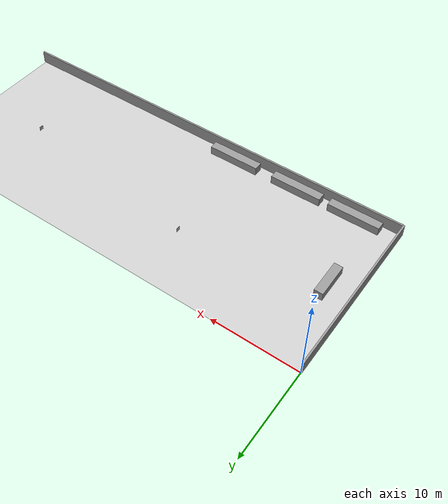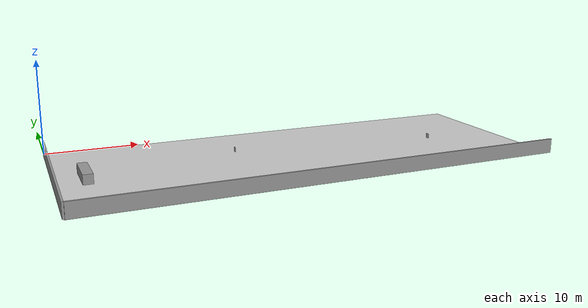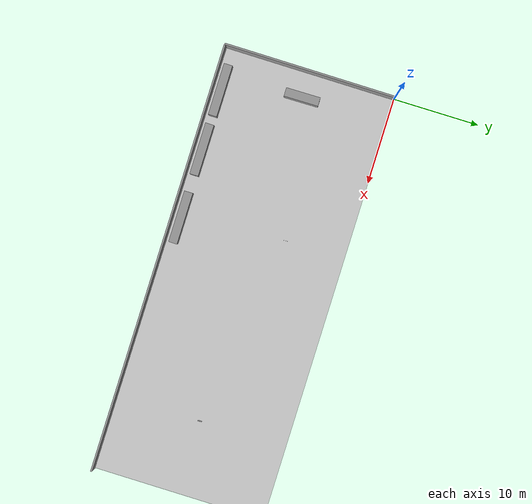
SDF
<sdf version="1.7">
 <world name="default">
  <light name="sun" type="directional">
   <pose>0 0 10 0 -0 0</pose>
   <diffuse>0.8 0.8 0.8 1</diffuse>
   <specular>0.2 0.2 0.2 1</specular>
   <attenuation>
    <range>1000</range>
    <constant>0.9</constant>
    <linear>0.01</linear>
    <quadratic>0.001</quadratic>
   </attenuation>
   <direction>-0.5 0.1 -0.9</direction>
   <spot><inner_angle>0</inner_angle><outer_angle>0</outer_angle><falloff>0</falloff></spot>
  </light>
  <gravity>0 0 -9.8</gravity>
  <magnetic_field>6e-06 2.3e-05 -4.2e-05</magnetic_field>
  <atmosphere type="adiabatic"/>
  <physics type="ode">
   <max_step_size>0.001</max_step_size>
   <real_time_factor>1</real_time_factor>
   <real_time_update_rate>500</real_time_update_rate>
   <ode>
    <solver>
     <type>quick</type>
     <iters>50</iters>
     <sor>1.3</sor>
     <use_dynamic_moi_rescaling>0</use_dynamic_moi_rescaling>
    </solver>
    <constraints>
     <cfm>0</cfm>
     <erp>0.2</erp>
     <contact_max_correcting_vel>100</contact_max_correcting_vel>
     <contact_surface_layer>0.001</contact_surface_layer>
    </constraints>
   </ode>
  </physics>
  <scene><ambient>0.4 0.4 0.4 1</ambient><background>0.7 0.7 0.7 1</background><shadows>0</shadows></scene>
  <audio><device>default</device></audio>
  <spherical_coordinates>
   <surface_model>EARTH_WGS84</surface_model>
   <latitude_deg>0</latitude_deg>
   <longitude_deg>0</longitude_deg>
   <elevation>0</elevation>
   <heading_deg>0</heading_deg>
  </spherical_coordinates>
  <model name="my_ground_plane">
   <static>1</static>
   <link name="link">
    <collision name="collision">
     <geometry><plane><normal>0 0 1</normal><size>20 50</size></plane></geometry>
     <surface><friction><ode><mu>100</mu><mu2>50</mu2></ode></friction></surface>
    </collision>
    <visual name="visual">
     <cast_shadows>0</cast_shadows>
     <geometry><plane><normal>0 0 1</normal><size>20 50</size></plane></geometry>
     <material>
      <script>
       <uri>model://my_ground_plane/materials/scripts</uri>
       <uri>model://my_ground_plane/materials/textures/</uri>
       <name>MyGroundPlane/Image</name>
      </script>
     </material>
    </visual>
   </link>
   <pose>25 -10 0 0 -0 1.57</pose>
  </model>
  <model name="grey_wall">
   <static>1</static>
   <link name="link">
    <pose>0 0 1.4 0 -0 0</pose>
    <collision name="collision"><geometry><box><size>20 0.2 1.5</size></box></geometry></collision>
    <visual name="visual">
     <cast_shadows>0</cast_shadows>
     <geometry><box><size>20 0.2 1.5</size></box></geometry>
     <material>
      <script>
       <uri>model://grey_wall/materials/scripts</uri>
       <uri>model://grey_wall/materials/textures</uri>
       <name>vrc/grey_wall</name>
      </script>
     </material>
    </visual>
   </link>
   <pose>0 -10 -0.65 0 -0 1.57</pose>
  </model>
  <model name="grey_wall_0">
   <static>1</static>
   <link name="link">
    <pose>0 0 1.4 0 -0 1.57</pose>
    <collision name="collision"><geometry><box><size>50 0.2 1.5</size></box></geometry></collision>
    <visual name="visual">
     <cast_shadows>0</cast_shadows>
     <geometry><box><size>50 0.2 1.5</size></box></geometry>
     <material>
      <script>
       <uri>model://grey_wall/materials/scripts</uri>
       <uri>model://grey_wall/materials/textures</uri>
       <name>vrc/grey_wall</name>
      </script>
     </material>
    </visual>
   </link>
   <pose>25.1 -20 -0.65 0 -0 1.57</pose>
  </model>
  <model name="unit_box">
   <pose>3.0001 -9.99003 0.499274 1.3e-05 0.000368 1.58197</pose>
   <link name="link">
    <inertial>
     <mass>1</mass>
     <inertia>
      <ixx>0.166667</ixx>
      <ixy>0</ixy>
      <ixz>0</ixz>
      <iyy>0.166667</iyy>
      <iyz>0</iyz>
      <izz>0.166667</izz>
     </inertia>
    </inertial>
    <collision name="collision"><geometry><box><size>4 1 1</size></box></geometry></collision>
    <visual name="visual">
     <geometry><box><size>4 1 1</size></box></geometry>
     <material>
      <script><name>Gazebo/Grey</name><uri>file://media/materials/scripts/gazebo.material</uri></script>
     </material>
    </visual>
   </link>
  </model>
  <model name="unit_box_0_clone">
   <pose>20.0009 -18.999 0.499996 3e-06 3e-06 -9.1e-05</pose>
   <link name="link">
    <inertial>
     <mass>1</mass>
     <inertia>
      <ixx>0.166667</ixx>
      <ixy>0</ixy>
      <ixz>0</ixz>
      <iyy>0.166667</iyy>
      <iyz>0</iyz>
      <izz>0.166667</izz>
     </inertia>
    </inertial>
    <collision name="collision"><geometry><box><size>6 1 1</size></box></geometry></collision>
    <visual name="visual">
     <geometry><box><size>6 1 1</size></box></geometry>
     <material>
      <script><name>Gazebo/Grey</name><uri>file://media/materials/scripts/gazebo.material</uri></script>
     </material>
    </visual>
   </link>
  </model>
  <model name="unit_box_0_clone_0">
   <pose>5 -18.9985 0.499992 -1.5e-05 3e-06 1e-06</pose>
   <link name="link">
    <inertial>
     <mass>1</mass>
     <inertia>
      <ixx>0.166667</ixx>
      <ixy>0</ixy>
      <ixz>0</ixz>
      <iyy>0.166667</iyy>
      <iyz>0</iyz>
      <izz>0.166667</izz>
     </inertia>
    </inertial>
    <collision name="collision"><geometry><box><size>6 1 1</size></box></geometry></collision>
    <visual name="visual">
     <geometry><box><size>6 1 1</size></box></geometry>
     <material>
      <script><name>Gazebo/Grey</name><uri>file://media/materials/scripts/gazebo.material</uri></script>
     </material>
    </visual>
   </link>
  </model>
  <model name="unit_box_0_clone_0_clone">
   <pose>12 -19.0015 0.499996 -3e-06 3e-06 -4e-06</pose>
   <link name="link">
    <inertial>
     <mass>1</mass>
     <inertia>
      <ixx>0.166667</ixx>
      <ixy>0</ixy>
      <ixz>0</ixz>
      <iyy>0.166667</iyy>
      <iyz>0</iyz>
      <izz>0.166667</izz>
     </inertia>
    </inertial>
    <collision name="collision"><geometry><box><size>6 1 1</size></box></geometry></collision>
    <visual name="visual">
     <geometry><box><size>6 1 1</size></box></geometry>
     <material>
      <script><name>Gazebo/Grey</name><uri>file://media/materials/scripts/gazebo.material</uri></script>
     </material>
    </visual>
   </link>
  </model>
  <model name="Apriltag36_11_00000">
   <link name="main">
    <visual name="main_Visual">
     <geometry><box><size>0.5 0.5 0.01</size></box></geometry>
     <material>
      <script>
       <uri>model://Apriltag36_11_00000/materials/scripts</uri>
       <uri>model://Apriltag36_11_00000/materials/textures</uri>
       <name>Apriltag36_11_00000</name>
      </script>
     </material>
    </visual>
   </link>
   <static>1</static>
   <pose>19 -7 0.3 0 1.57 0</pose>
  </model>
  <model name="Apriltag36_11_00000_clone">
   <link name="main">
    <visual name="main_Visual">
     <geometry><box><size>0.5 0.5 0.01</size></box></geometry>
     <material>
      <script>
       <uri>model://Apriltag36_11_00000/materials/scripts</uri>
       <uri>model://Apriltag36_11_00000/materials/textures</uri>
       <name>Apriltag36_11_00000</name>
      </script>
     </material>
    </visual>
   </link>
   <static>1</static>
   <pose>41.345 -10.1778 0.3 0 1.57 0</pose>
  </model>
 </world>
</sdf>
